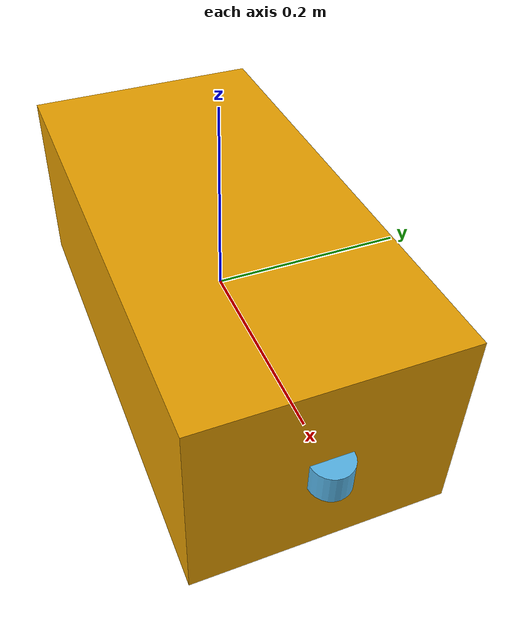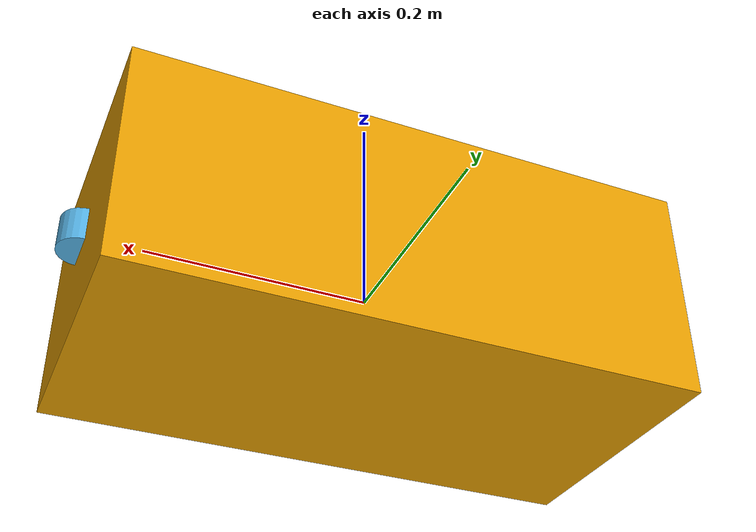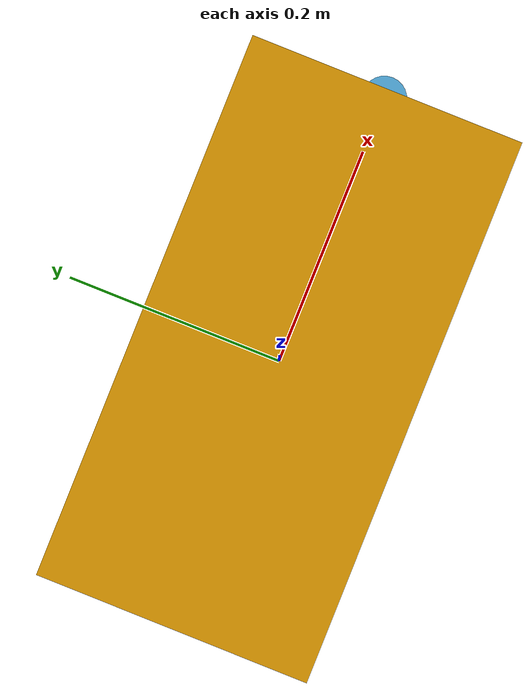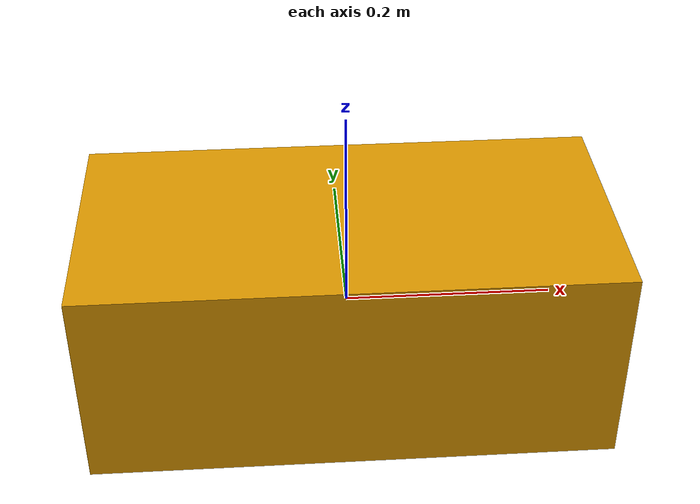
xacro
<?xml version="1.0"?>
<robot name="depth_camera_robot" xmlns:xacro="http://ros.org/wiki/xacro">

  <xacro:property name="pi" value="3.1415" />

  <link name="base_link">
    <visual>
      <geometry>
        <box size="0.5 0.25 0.2"/>
      </geometry>
    </visual>
    <inertial>
      <mass value="1.0"/>
      <origin xyz="0.0 0.0 0.0"/>
      <inertia ixx="1.0" ixy="0.0" ixz="0.0" iyy="1.0" iyz="0.0" izz="1.0"/>
    </inertial>
  </link>

  <link name="sensor_link">
    <visual>
      <origin xyz="0.0 0.0 0.0" rpy="0.0 ${pi/2} 0.0"/>
      <geometry>
        <cylinder radius="0.02" length="0.03"/>
      </geometry>
    </visual>
  </link>

  <link name="sensor_optical_link">
  </link>

  <joint name="sensor_joint" type="fixed">
    <parent link="base_link"/>
    <child link="sensor_link"/>
    <origin xyz="0.25 0.0 0.0" rpy="0 ${pi/2} 0" />
  </joint>

  <joint name="sensor_optical_joint" type="fixed">
    <parent link="sensor_link"/>
    <child link="sensor_optical_link"/>
    <origin xyz="0.0 0.0 0.0" rpy="-${pi/2} 0.0 -${pi/2}" />
  </joint>

  <!-- Gazebo plugin for depth camera -->
  <gazebo reference="sensor_link">
    <sensor type="depth" name="camera">
      <always_on>true</always_on>
      <update_rate>2.0</update_rate>
      <camera>
        <horizontal_fov>${60.0*pi/180.0}</horizontal_fov>
        <image>
          <format>R8G8B8</format>
          <width>640</width>
          <height>480</height>
        </image>
        <clip>
          <near>0.05</near>
          <far>8.0</far>
        </clip>
      </camera>
      <plugin name="depth_camera_controller" filename="libgazebo_ros_openni_kinect.so">
        <cameraName>camera</cameraName>
        <alwaysOn>true</alwaysOn>
        <updateRate>0.0</updateRate>
        <imageTopicName>rgb/image_raw</imageTopicName>
        <depthImageTopicName>depth/image_raw</depthImageTopicName>
        <pointCloudTopicName>depth/points</pointCloudTopicName>
        <cameraInfoTopicName>rgb/camera_info</cameraInfoTopicName>
        <depthImageCameraInfoTopicName>depth/camera_info</depthImageCameraInfoTopicName>
        <frameName>sensor_optical_link</frameName>
        <baseline>0.1</baseline>
        <distortion_k1>0.0</distortion_k1>
        <distortion_k2>0.0</distortion_k2>
        <distortion_k3>0.0</distortion_k3>
        <distortion_t1>0.0</distortion_t1>
        <distortion_t2>0.0</distortion_t2>
        <pointCloudCutoff>0.05</pointCloudCutoff>
        <pointCloudCutoffMax>5</pointCloudCutoffMax>
        <rangeMax>4.0</rangeMax>
      </plugin>
    </sensor>
  </gazebo>

  <!-- Gazebo plugin for odometry base motion (Gaussian random walk) -->
  <gazebo>
    <plugin name="odometry_motion_gazebo_ros_control" filename="libodometry_motion_gazebo_ros_control.so">
    </plugin>
  </gazebo>

</robot>
